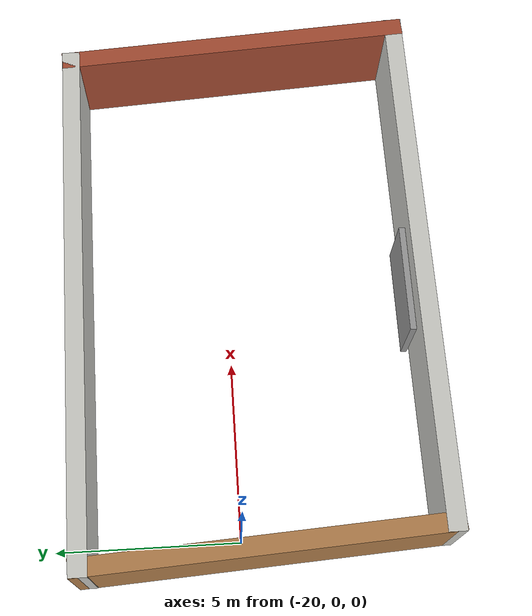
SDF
<?xml version='1.0'?>
<sdf version='1.7'>
  <model name='building'>
    <pose>-10.4905 -0.594975 0 0 -0 0</pose>
    <link name='Door_0'>
      <collision name='Door_0_Collision'>
        <geometry>
          <box>
            <size>3 0.17 2</size>
          </box>
        </geometry>
        <pose>0 0 1 0 -0 0</pose>
      </collision>
      <visual name='Door_0_Visual'>
        <pose>0 0 1 0 -0 0</pose>
        <geometry>
          <box>
            <size>3 0.17 2</size>
          </box>
        </geometry>
        <material>
          <script>
            <uri>file://media/materials/scripts/gazebo.material</uri>
            <name>Gazebo/Grey</name>
          </script>
        </material>
      </visual>
      <pose>-2.85103 -4.35705 0 0 -0 0</pose>
    </link>
    <link name='Wall_0'>
      <collision name='Wall_0_Collision'>
        <geometry>
          <box>
            <size>10.0149 0.5 2.5</size>
          </box>
        </geometry>
        <pose>0 0 1.25 0 -0 0</pose>
      </collision>
      <visual name='Wall_0_Visual'>
        <pose>0 0 1.25 0 -0 0</pose>
        <geometry>
          <box>
            <size>10.0149 0.5 2.5</size>
          </box>
        </geometry>
        <material>
          <script>
            <uri>file://media/materials/scripts/gazebo.material</uri>
            <name>Gazebo/Wood</name>
          </script>
          <ambient>0.996078 0.47451 0.0196078 1</ambient>
        </material>
        <meta>
          <layer>0</layer>
        </meta>
      </visual>
      <pose>-9.92047 -0.048023 0 0 -0 1.63485</pose>
    </link>
    <link name='Wall_1'>
      <collision name='Wall_1_Collision'>
        <geometry>
          <box>
            <size>15 0.5 2.5</size>
          </box>
        </geometry>
        <pose>0 0 1.25 0 -0 0</pose>
      </collision>
      <visual name='Wall_1_Visual'>
        <pose>0 0 1.25 0 -0 0</pose>
        <geometry>
          <box>
            <size>15 0.5 2.5</size>
          </box>
        </geometry>
        <material>
          <script>
            <uri>file://media/materials/scripts/gazebo.material</uri>
            <name>Gazebo/CeilingTiled</name>
          </script>
          <ambient>0.996078 0.47451 0.0196078 1</ambient>
        </material>
        <meta>
          <layer>0</layer>
        </meta>
      </visual>
      <pose>-2.97516 4.74766 0 0 -0 0.006622</pose>
    </link>
    <link name='Wall_2'>
      <collision name='Wall_2_Collision'>
        <geometry>
          <box>
            <size>10 0.5 2.5</size>
          </box>
        </geometry>
        <pose>0 0 1.25 0 -0 0</pose>
      </collision>
      <visual name='Wall_2_Visual'>
        <pose>0 0 1.25 0 -0 0</pose>
        <geometry>
          <box>
            <size>10 0.5 2.5</size>
          </box>
        </geometry>
        <material>
          <script>
            <uri>file://media/materials/scripts/gazebo.material</uri>
            <name>Gazebo/Bricks</name>
          </script>
          <ambient>0.996078 0.47451 0.0196078 1</ambient>
        </material>
        <meta>
          <layer>0</layer>
        </meta>
      </visual>
      <pose>4.57916 0.055441 0 0 -0 -1.50665</pose>
    </link>
    <link name='Wall_3'>
      <collision name='Wall_3_Collision'>
        <geometry>
          <box>
            <size>15 0.5 2.5</size>
          </box>
        </geometry>
        <pose>0 0 1.25 0 -0 0</pose>
      </collision>
      <visual name='Wall_3_Visual'>
        <pose>0 0 1.25 0 -0 0</pose>
        <geometry>
          <box>
            <size>15 0.5 2.5</size>
          </box>
        </geometry>
        <material>
          <script>
            <uri>file://media/materials/scripts/gazebo.material</uri>
            <name>Gazebo/CeilingTiled</name>
          </script>
          <ambient>0.435294 0.796078 0.67451 1</ambient>
        </material>
        <meta>
          <layer>0</layer>
        </meta>
      </visual>
      <pose>-2.36615 -4.74024 0 0 -0 -3.13394</pose>
    </link>
    <static>1</static>
  </model>
</sdf>
